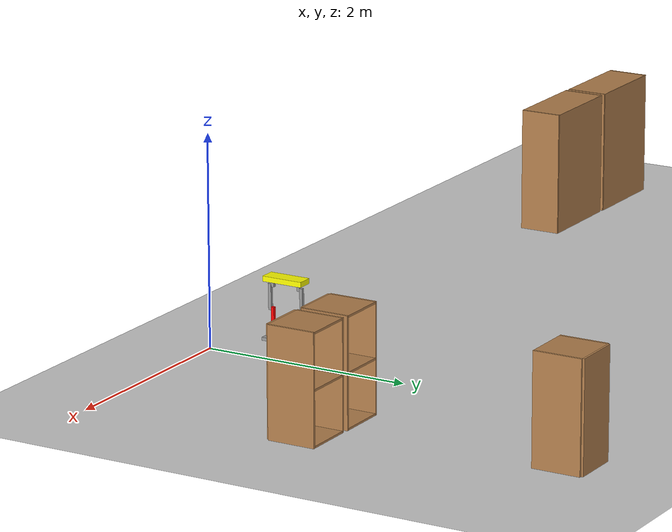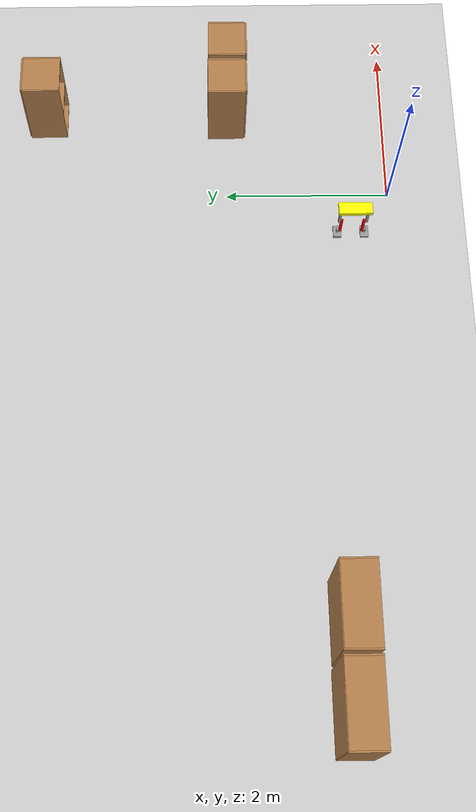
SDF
<sdf version="1.6">
 <world name="default">
  <model name="ground_plane">
   <static>1</static>
   <link name="link">
    <collision name="collision">
     <geometry><plane><normal>0 0 1</normal><size>100 100</size></plane></geometry>
     <surface><friction><ode><mu>100</mu><mu2>50</mu2></ode></friction></surface>
    </collision>
    <visual name="visual">
     <cast_shadows>0</cast_shadows>
     <geometry><plane><normal>0 0 1</normal><size>100 100</size></plane></geometry>
     <material>
      <script><uri>file://media/materials/scripts/gazebo.material</uri><name>Gazebo/Grey</name></script>
     </material>
    </visual>
   </link>
  </model>
  <model name="cabinet_clone">
   <static>1</static>
   <link name="cabinet_bottom_plate">
    <inertial>
     <pose>0 0 -1 0 -0 0</pose>
     <inertia><ixx>2.05</ixx><ixy>0</ixy><ixz>0</ixz><iyy>2.05</iyy><iyz>0</iyz><izz>2.05</izz></inertia>
     <mass>25</mass>
    </inertial>
    <collision name="cabinet_bottom_plate_geom">
     <pose>0 0 0.01 0 -0 0</pose>
     <geometry><box><size>0.45 0.45 0.02</size></box></geometry>
    </collision>
    <visual name="cabinet_bottom_plate_geom_visual">
     <pose>0 0 0.01 0 -0 0</pose>
     <geometry><box><size>0.45 0.45 0.02</size></box></geometry>
     <material>
      <script><uri>file://media/materials/scripts/gazebo.material</uri><name>Gazebo/Wood</name></script>
     </material>
    </visual>
    <collision name="cabinet_bottom_plate_geom_cabinet_back_plate">
     <pose>0.235 0 0.51 0 -0 0</pose>
     <geometry><box><size>0.02 0.45 1.02</size></box></geometry>
    </collision>
    <visual name="cabinet_bottom_plate_geom_cabinet_back_plate_visual">
     <pose>0.235 0 0.51 0 -0 0</pose>
     <geometry><box><size>0.02 0.45 1.02</size></box></geometry>
     <material>
      <script><uri>file://media/materials/scripts/gazebo.material</uri><name>Gazebo/Wood</name></script>
     </material>
    </visual>
    <collision name="cabinet_bottom_plate_geom_cabinet_left_plate">
     <pose>0 0.235 0.51 0 -0 0</pose>
     <geometry><box><size>0.45 0.02 1.02</size></box></geometry>
    </collision>
    <visual name="cabinet_bottom_plate_geom_cabinet_left_plate_visual">
     <pose>0 0.235 0.51 0 -0 0</pose>
     <geometry><box><size>0.45 0.02 1.02</size></box></geometry>
     <material>
      <script><uri>file://media/materials/scripts/gazebo.material</uri><name>Gazebo/Wood</name></script>
     </material>
    </visual>
    <collision name="cabinet_bottom_plate_geom_cabinet_middle_plate">
     <pose>0 0 0.51 0 -0 0</pose>
     <geometry><box><size>0.45 0.45 0.02</size></box></geometry>
    </collision>
    <visual name="cabinet_bottom_plate_geom_cabinet_middle_plate_visual">
     <pose>0 0 0.51 0 -0 0</pose>
     <geometry><box><size>0.45 0.45 0.02</size></box></geometry>
     <material>
      <script><uri>file://media/materials/scripts/gazebo.material</uri><name>Gazebo/Wood</name></script>
     </material>
    </visual>
    <collision name="cabinet_bottom_plate_geom_cabinet_right_plate">
     <pose>0 -0.235 0.51 0 -0 0</pose>
     <geometry><box><size>0.45 0.02 1.02</size></box></geometry>
    </collision>
    <visual name="cabinet_bottom_plate_geom_cabinet_right_plate_visual">
     <pose>0 -0.235 0.51 0 -0 0</pose>
     <geometry><box><size>0.45 0.02 1.02</size></box></geometry>
     <material>
      <script><uri>file://media/materials/scripts/gazebo.material</uri><name>Gazebo/Wood</name></script>
     </material>
    </visual>
    <collision name="cabinet_bottom_plate_geom_cabinet_top_plate">
     <pose>0 0 1.01 0 -0 0</pose>
     <geometry><box><size>0.45 0.45 0.02</size></box></geometry>
    </collision>
    <visual name="cabinet_bottom_plate_geom_cabinet_top_plate_visual">
     <pose>0 0 1.01 0 -0 0</pose>
     <geometry><box><size>0.45 0.45 0.02</size></box></geometry>
     <material>
      <script><uri>file://media/materials/scripts/gazebo.material</uri><name>Gazebo/Wood</name></script>
     </material>
    </visual>
   </link>
   <pose>1.62851 1.98889 0 0 0 -1.5708</pose>
  </model>
  <model name="cabinet_clone_0">
   <static>1</static>
   <link name="cabinet_bottom_plate">
    <inertial>
     <pose>0 0 -1 0 -0 0</pose>
     <inertia><ixx>2.05</ixx><ixy>0</ixy><ixz>0</ixz><iyy>2.05</iyy><iyz>0</iyz><izz>2.05</izz></inertia>
     <mass>25</mass>
    </inertial>
    <collision name="cabinet_bottom_plate_geom">
     <pose>0 0 0.01 0 -0 0</pose>
     <geometry><box><size>0.45 0.45 0.02</size></box></geometry>
    </collision>
    <visual name="cabinet_bottom_plate_geom_visual">
     <pose>0 0 0.01 0 -0 0</pose>
     <geometry><box><size>0.45 0.45 0.02</size></box></geometry>
     <material>
      <script><uri>file://media/materials/scripts/gazebo.material</uri><name>Gazebo/Wood</name></script>
     </material>
    </visual>
    <collision name="cabinet_bottom_plate_geom_cabinet_back_plate">
     <pose>0.235 0 0.51 0 -0 0</pose>
     <geometry><box><size>0.02 0.45 1.02</size></box></geometry>
    </collision>
    <visual name="cabinet_bottom_plate_geom_cabinet_back_plate_visual">
     <pose>0.235 0 0.51 0 -0 0</pose>
     <geometry><box><size>0.02 0.45 1.02</size></box></geometry>
     <material>
      <script><uri>file://media/materials/scripts/gazebo.material</uri><name>Gazebo/Wood</name></script>
     </material>
    </visual>
    <collision name="cabinet_bottom_plate_geom_cabinet_left_plate">
     <pose>0 0.235 0.51 0 -0 0</pose>
     <geometry><box><size>0.45 0.02 1.02</size></box></geometry>
    </collision>
    <visual name="cabinet_bottom_plate_geom_cabinet_left_plate_visual">
     <pose>0 0.235 0.51 0 -0 0</pose>
     <geometry><box><size>0.45 0.02 1.02</size></box></geometry>
     <material>
      <script><uri>file://media/materials/scripts/gazebo.material</uri><name>Gazebo/Wood</name></script>
     </material>
    </visual>
    <collision name="cabinet_bottom_plate_geom_cabinet_middle_plate">
     <pose>0 0 0.51 0 -0 0</pose>
     <geometry><box><size>0.45 0.45 0.02</size></box></geometry>
    </collision>
    <visual name="cabinet_bottom_plate_geom_cabinet_middle_plate_visual">
     <pose>0 0 0.51 0 -0 0</pose>
     <geometry><box><size>0.45 0.45 0.02</size></box></geometry>
     <material>
      <script><uri>file://media/materials/scripts/gazebo.material</uri><name>Gazebo/Wood</name></script>
     </material>
    </visual>
    <collision name="cabinet_bottom_plate_geom_cabinet_right_plate">
     <pose>0 -0.235 0.51 0 -0 0</pose>
     <geometry><box><size>0.45 0.02 1.02</size></box></geometry>
    </collision>
    <visual name="cabinet_bottom_plate_geom_cabinet_right_plate_visual">
     <pose>0 -0.235 0.51 0 -0 0</pose>
     <geometry><box><size>0.45 0.02 1.02</size></box></geometry>
     <material>
      <script><uri>file://media/materials/scripts/gazebo.material</uri><name>Gazebo/Wood</name></script>
     </material>
    </visual>
    <collision name="cabinet_bottom_plate_geom_cabinet_top_plate">
     <pose>0 0 1.01 0 -0 0</pose>
     <geometry><box><size>0.45 0.45 0.02</size></box></geometry>
    </collision>
    <visual name="cabinet_bottom_plate_geom_cabinet_top_plate_visual">
     <pose>0 0 1.01 0 -0 0</pose>
     <geometry><box><size>0.45 0.45 0.02</size></box></geometry>
     <material>
      <script><uri>file://media/materials/scripts/gazebo.material</uri><name>Gazebo/Wood</name></script>
     </material>
    </visual>
   </link>
   <pose>1.09244 1.99689 0 0 0 -1.5708</pose>
  </model>
  <model name="cabinet_1_clone_1">
   <static>1</static>
   <link name="cabinet_bottom_plate">
    <inertial>
     <pose>0 0 -1 0 -0 0</pose>
     <inertia><ixx>2.05</ixx><ixy>0</ixy><ixz>0</ixz><iyy>2.05</iyy><iyz>0</iyz><izz>2.05</izz></inertia>
     <mass>25</mass>
    </inertial>
    <collision name="cabinet_bottom_plate_geom">
     <pose>0 0 0.01 0 -0 0</pose>
     <geometry><box><size>0.45 0.45 0.02</size></box></geometry>
    </collision>
    <visual name="cabinet_bottom_plate_geom_visual">
     <pose>0 0 0.01 0 -0 0</pose>
     <geometry><box><size>0.45 0.45 0.02</size></box></geometry>
     <material>
      <script><uri>file://media/materials/scripts/gazebo.material</uri><name>Gazebo/Wood</name></script>
     </material>
    </visual>
    <collision name="cabinet_bottom_plate_geom_cabinet_back_plate">
     <pose>0.235 0 0.51 0 -0 0</pose>
     <geometry><box><size>0.02 0.45 1.02</size></box></geometry>
    </collision>
    <visual name="cabinet_bottom_plate_geom_cabinet_back_plate_visual">
     <pose>0.235 0 0.51 0 -0 0</pose>
     <geometry><box><size>0.02 0.45 1.02</size></box></geometry>
     <material>
      <script><uri>file://media/materials/scripts/gazebo.material</uri><name>Gazebo/Wood</name></script>
     </material>
    </visual>
    <collision name="cabinet_bottom_plate_geom_cabinet_left_plate">
     <pose>0 0.235 0.51 0 -0 0</pose>
     <geometry><box><size>0.45 0.02 1.02</size></box></geometry>
    </collision>
    <visual name="cabinet_bottom_plate_geom_cabinet_left_plate_visual">
     <pose>0 0.235 0.51 0 -0 0</pose>
     <geometry><box><size>0.45 0.02 1.02</size></box></geometry>
     <material>
      <script><uri>file://media/materials/scripts/gazebo.material</uri><name>Gazebo/Wood</name></script>
     </material>
    </visual>
    <collision name="cabinet_bottom_plate_geom_cabinet_middle_plate">
     <pose>0 0 0.51 0 -0 0</pose>
     <geometry><box><size>0.45 0.45 0.02</size></box></geometry>
    </collision>
    <visual name="cabinet_bottom_plate_geom_cabinet_middle_plate_visual">
     <pose>0 0 0.51 0 -0 0</pose>
     <geometry><box><size>0.45 0.45 0.02</size></box></geometry>
     <material>
      <script><uri>file://media/materials/scripts/gazebo.material</uri><name>Gazebo/Wood</name></script>
     </material>
    </visual>
    <collision name="cabinet_bottom_plate_geom_cabinet_right_plate">
     <pose>0 -0.235 0.51 0 -0 0</pose>
     <geometry><box><size>0.45 0.02 1.02</size></box></geometry>
    </collision>
    <visual name="cabinet_bottom_plate_geom_cabinet_right_plate_visual">
     <pose>0 -0.235 0.51 0 -0 0</pose>
     <geometry><box><size>0.45 0.02 1.02</size></box></geometry>
     <material>
      <script><uri>file://media/materials/scripts/gazebo.material</uri><name>Gazebo/Wood</name></script>
     </material>
    </visual>
    <collision name="cabinet_bottom_plate_geom_cabinet_top_plate">
     <pose>0 0 1.01 0 -0 0</pose>
     <geometry><box><size>0.45 0.45 0.02</size></box></geometry>
    </collision>
    <visual name="cabinet_bottom_plate_geom_cabinet_top_plate_visual">
     <pose>0 0 1.01 0 -0 0</pose>
     <geometry><box><size>0.45 0.45 0.02</size></box></geometry>
     <material>
      <script><uri>file://media/materials/scripts/gazebo.material</uri><name>Gazebo/Wood</name></script>
     </material>
    </visual>
   </link>
   <pose>1.13427 4.23255 0 0 -0 1.5708</pose>
  </model>
  <model name="HumanoidRobot_0_0">
   <link name="link_1">
    <inertial>
     <mass>1</mass>
     <inertia>
      <ixx>0.166667</ixx>
      <ixy>0</ixy>
      <ixz>0</ixz>
      <iyy>0.166667</iyy>
      <iyz>0</iyz>
      <izz>0.166667</izz>
     </inertia>
    </inertial>
    <pose>0 0 0.585 0 -0 0</pose>
    <self_collide>1</self_collide>
    <visual name="ModelPreview_0::link_1::visual_2">
     <pose>0 -0.135 -0.055 0 -0 0</pose>
     <geometry><box><size>0.03 0.03 0.06</size></box></geometry>
     <material>
      <lighting>1</lighting>
      <script><uri>file://media/materials/scripts/gazebo.material</uri><name>Gazebo/Grey</name></script>
      <shader type="vertex"><normal_map>__default__</normal_map></shader>
      <ambient>0.3 0.3 0.3 1</ambient>
      <diffuse>0.7 0.7 0.7 1</diffuse>
      <specular>0.01 0.01 0.01 1</specular>
      <emissive>0 0 0 1</emissive>
     </material>
    </visual>
    <visual name="ModelPreview_0::link_1::visual_1">
     <pose>0 0.135 -0.055 0 -0 0</pose>
     <geometry><box><size>0.03 0.03 0.06</size></box></geometry>
     <material>
      <lighting>1</lighting>
      <script><uri>file://media/materials/scripts/gazebo.material</uri><name>Gazebo/Grey</name></script>
      <shader type="vertex"><normal_map>__default__</normal_map></shader>
      <ambient>0.3 0.3 0.3 1</ambient>
      <diffuse>0.7 0.7 0.7 1</diffuse>
      <specular>0.01 0.01 0.01 1</specular>
      <emissive>0 0 0 1</emissive>
     </material>
    </visual>
    <visual name="visual">
     <geometry><box><size>0.15 0.4 0.05</size></box></geometry>
     <material>
      <lighting>1</lighting>
      <script><uri>file://media/materials/scripts/gazebo.material</uri><name>Gazebo/Grey</name></script>
      <shader type="vertex"><normal_map>__default__</normal_map></shader>
      <ambient>1 1 0 1</ambient>
      <diffuse>0.7 0.7 0.7 1</diffuse>
      <specular>0.01 0.01 0.01 1</specular>
      <emissive>0 0 0 1</emissive>
     </material>
    </visual>
    <collision name="collision">
     <geometry><box><size>0.15 0.4 0.05</size></box></geometry>
     <surface>
      <friction>
       <ode><mu>1</mu><mu2>1</mu2><fdir1>0 0 0</fdir1><slip1>0</slip1><slip2>0</slip2></ode>
       <torsional>
        <coefficient>1</coefficient>
        <patch_radius>0</patch_radius>
        <surface_radius>0</surface_radius>
        <use_patch_radius>1</use_patch_radius>
        <ode><slip>0</slip></ode>
       </torsional>
      </friction>
      <bounce><restitution_coefficient>0</restitution_coefficient><threshold>1e+06</threshold></bounce>
      <contact>
       <collide_without_contact>0</collide_without_contact>
       <collide_without_contact_bitmask>1</collide_without_contact_bitmask>
       <collide_bitmask>1</collide_bitmask>
       <ode>
        <soft_cfm>0</soft_cfm>
        <soft_erp>0.2</soft_erp>
        <kp>1e+13</kp>
        <kd>1</kd>
        <max_vel>0.01</max_vel>
        <min_depth>0</min_depth>
       </ode>
       <bullet>
        <split_impulse>1</split_impulse>
        <split_impulse_penetration_threshold>-0.01</split_impulse_penetration_threshold>
        <soft_cfm>0</soft_cfm>
        <soft_erp>0.2</soft_erp>
        <kp>1e+13</kp>
        <kd>1</kd>
       </bullet>
      </contact>
     </surface>
    </collision>
    <collision name="collision_2">
     <pose>0 -0.135 -0.055 0 -0 0</pose>
     <geometry><box><size>0.03 0.03 0.06</size></box></geometry>
     <surface>
      <friction>
       <ode><mu>1</mu><mu2>1</mu2><fdir1>0 0 0</fdir1><slip1>0</slip1><slip2>0</slip2></ode>
       <torsional>
        <coefficient>1</coefficient>
        <patch_radius>0</patch_radius>
        <surface_radius>0</surface_radius>
        <use_patch_radius>1</use_patch_radius>
        <ode><slip>0</slip></ode>
       </torsional>
      </friction>
      <bounce><restitution_coefficient>0</restitution_coefficient><threshold>1e+06</threshold></bounce>
      <contact>
       <collide_without_contact>0</collide_without_contact>
       <collide_without_contact_bitmask>1</collide_without_contact_bitmask>
       <collide_bitmask>1</collide_bitmask>
       <ode>
        <soft_cfm>0</soft_cfm>
        <soft_erp>0.2</soft_erp>
        <kp>1e+13</kp>
        <kd>1</kd>
        <max_vel>0.01</max_vel>
        <min_depth>0</min_depth>
       </ode>
       <bullet>
        <split_impulse>1</split_impulse>
        <split_impulse_penetration_threshold>-0.01</split_impulse_penetration_threshold>
        <soft_cfm>0</soft_cfm>
        <soft_erp>0.2</soft_erp>
        <kp>1e+13</kp>
        <kd>1</kd>
       </bullet>
      </contact>
     </surface>
    </collision>
    <collision name="collision_1">
     <pose>0 0.135 -0.055 0 -0 0</pose>
     <geometry><box><size>0.03 0.03 0.06</size></box></geometry>
     <surface>
      <friction>
       <ode><mu>1</mu><mu2>1</mu2><fdir1>0 0 0</fdir1><slip1>0</slip1><slip2>0</slip2></ode>
       <torsional>
        <coefficient>1</coefficient>
        <patch_radius>0</patch_radius>
        <surface_radius>0</surface_radius>
        <use_patch_radius>1</use_patch_radius>
        <ode><slip>0</slip></ode>
       </torsional>
      </friction>
      <bounce><restitution_coefficient>0</restitution_coefficient><threshold>1e+06</threshold></bounce>
      <contact>
       <collide_without_contact>0</collide_without_contact>
       <collide_without_contact_bitmask>1</collide_without_contact_bitmask>
       <collide_bitmask>1</collide_bitmask>
       <ode>
        <soft_cfm>0</soft_cfm>
        <soft_erp>0.2</soft_erp>
        <kp>1e+13</kp>
        <kd>1</kd>
        <max_vel>0.01</max_vel>
        <min_depth>0</min_depth>
       </ode>
       <bullet>
        <split_impulse>1</split_impulse>
        <split_impulse_penetration_threshold>-0.01</split_impulse_penetration_threshold>
        <soft_cfm>0</soft_cfm>
        <soft_erp>0.2</soft_erp>
        <kp>1e+13</kp>
        <kd>1</kd>
       </bullet>
      </contact>
     </surface>
    </collision>
   </link>
   <link name="link_0">
    <inertial>
     <mass>1</mass>
     <inertia>
      <ixx>0.166667</ixx>
      <ixy>0</ixy>
      <ixz>0</ixz>
      <iyy>0.166667</iyy>
      <iyz>0</iyz>
      <izz>0.166667</izz>
     </inertia>
    </inertial>
    <pose>0 -0.165 0.015 0 -0 0</pose>
    <self_collide>1</self_collide>
    <visual name="ModelPreview_1::link_0::visual_1">
     <pose>0 0 0.045 0 -0 0</pose>
     <geometry><box><size>0.03 0.03 0.06</size></box></geometry>
     <material>
      <lighting>1</lighting>
      <script><uri>file://media/materials/scripts/gazebo.material</uri><name>Gazebo/Grey</name></script>
      <shader type="vertex"><normal_map>__default__</normal_map></shader>
      <ambient>0.3 0.3 0.3 1</ambient>
      <diffuse>0.7 0.7 0.7 1</diffuse>
      <specular>0.01 0.01 0.01 1</specular>
      <emissive>0 0 0 1</emissive>
     </material>
    </visual>
    <visual name="visual">
     <geometry><box><size>0.15 0.1 0.03</size></box></geometry>
     <material>
      <lighting>1</lighting>
      <script><uri>file://media/materials/scripts/gazebo.material</uri><name>Gazebo/Grey</name></script>
      <shader type="vertex"><normal_map>__default__</normal_map></shader>
      <ambient>0.3 0.3 0.3 1</ambient>
      <diffuse>0.7 0.7 0.7 1</diffuse>
      <specular>0.01 0.01 0.01 1</specular>
      <emissive>0 0 0 1</emissive>
     </material>
    </visual>
    <collision name="collision_1">
     <pose>0 0 0.045 0 -0 0</pose>
     <geometry><box><size>0.03 0.03 0.06</size></box></geometry>
     <surface>
      <friction>
       <ode><mu>1</mu><mu2>1</mu2><fdir1>0 0 0</fdir1><slip1>0</slip1><slip2>0</slip2></ode>
       <torsional>
        <coefficient>1</coefficient>
        <patch_radius>0</patch_radius>
        <surface_radius>0</surface_radius>
        <use_patch_radius>1</use_patch_radius>
        <ode><slip>0</slip></ode>
       </torsional>
      </friction>
      <bounce><restitution_coefficient>0</restitution_coefficient><threshold>1e+06</threshold></bounce>
      <contact>
       <collide_without_contact>0</collide_without_contact>
       <collide_without_contact_bitmask>1</collide_without_contact_bitmask>
       <collide_bitmask>1</collide_bitmask>
       <ode>
        <soft_cfm>0</soft_cfm>
        <soft_erp>0.2</soft_erp>
        <kp>1e+13</kp>
        <kd>1</kd>
        <max_vel>0.01</max_vel>
        <min_depth>0</min_depth>
       </ode>
       <bullet>
        <split_impulse>1</split_impulse>
        <split_impulse_penetration_threshold>-0.01</split_impulse_penetration_threshold>
        <soft_cfm>0</soft_cfm>
        <soft_erp>0.2</soft_erp>
        <kp>1e+13</kp>
        <kd>1</kd>
       </bullet>
      </contact>
     </surface>
    </collision>
    <collision name="collision">
     <geometry><box><size>0.15 0.1 0.03</size></box></geometry>
     <surface>
      <friction>
       <ode><mu>1</mu><mu2>1</mu2><fdir1>0 0 0</fdir1><slip1>0</slip1><slip2>0</slip2></ode>
       <torsional>
        <coefficient>1</coefficient>
        <patch_radius>0</patch_radius>
        <surface_radius>0</surface_radius>
        <use_patch_radius>1</use_patch_radius>
        <ode><slip>0</slip></ode>
       </torsional>
      </friction>
      <bounce><restitution_coefficient>0</restitution_coefficient><threshold>1e+06</threshold></bounce>
      <contact>
       <collide_without_contact>0</collide_without_contact>
       <collide_without_contact_bitmask>1</collide_without_contact_bitmask>
       <collide_bitmask>1</collide_bitmask>
       <ode>
        <soft_cfm>0</soft_cfm>
        <soft_erp>0.2</soft_erp>
        <kp>1e+13</kp>
        <kd>1</kd>
        <max_vel>0.01</max_vel>
        <min_depth>0</min_depth>
       </ode>
       <bullet>
        <split_impulse>1</split_impulse>
        <split_impulse_penetration_threshold>-0.01</split_impulse_penetration_threshold>
        <soft_cfm>0</soft_cfm>
        <soft_erp>0.2</soft_erp>
        <kp>1e+13</kp>
        <kd>1</kd>
       </bullet>
      </contact>
     </surface>
    </collision>
   </link>
   <link name="link_0_clone">
    <inertial>
     <mass>1</mass>
     <inertia>
      <ixx>0.166667</ixx>
      <ixy>0</ixy>
      <ixz>0</ixz>
      <iyy>0.166667</iyy>
      <iyz>0</iyz>
      <izz>0.166667</izz>
     </inertia>
    </inertial>
    <pose>0 0.165 0.015 0 -0 0</pose>
    <self_collide>1</self_collide>
    <visual name="visual">
     <geometry><box><size>0.15 0.1 0.03</size></box></geometry>
     <material>
      <lighting>1</lighting>
      <script><uri>file://media/materials/scripts/gazebo.material</uri><name>Gazebo/Grey</name></script>
      <shader type="vertex"><normal_map>__default__</normal_map></shader>
      <ambient>0.3 0.3 0.3 1</ambient>
      <diffuse>0.7 0.7 0.7 1</diffuse>
      <specular>0.01 0.01 0.01 1</specular>
      <emissive>0 0 0 1</emissive>
     </material>
    </visual>
    <visual name="visual_1">
     <pose>0 0 0.045 0 -0 0</pose>
     <geometry><box><size>0.03 0.03 0.06</size></box></geometry>
     <material>
      <lighting>1</lighting>
      <script><uri>file://media/materials/scripts/gazebo.material</uri><name>Gazebo/Grey</name></script>
      <shader type="vertex"><normal_map>__default__</normal_map></shader>
      <ambient>0.3 0.3 0.3 1</ambient>
      <diffuse>0.7 0.7 0.7 1</diffuse>
      <specular>0.01 0.01 0.01 1</specular>
      <emissive>0 0 0 1</emissive>
     </material>
    </visual>
    <collision name="collision">
     <geometry><box><size>0.15 0.1 0.03</size></box></geometry>
     <surface>
      <friction>
       <ode><mu>1</mu><mu2>1</mu2><fdir1>0 0 0</fdir1><slip1>0</slip1><slip2>0</slip2></ode>
       <torsional>
        <coefficient>1</coefficient>
        <patch_radius>0</patch_radius>
        <surface_radius>0</surface_radius>
        <use_patch_radius>1</use_patch_radius>
        <ode><slip>0</slip></ode>
       </torsional>
      </friction>
      <bounce><restitution_coefficient>0</restitution_coefficient><threshold>1e+06</threshold></bounce>
      <contact>
       <collide_without_contact>0</collide_without_contact>
       <collide_without_contact_bitmask>1</collide_without_contact_bitmask>
       <collide_bitmask>1</collide_bitmask>
       <ode>
        <soft_cfm>0</soft_cfm>
        <soft_erp>0.2</soft_erp>
        <kp>1e+13</kp>
        <kd>1</kd>
        <max_vel>0.01</max_vel>
        <min_depth>0</min_depth>
       </ode>
       <bullet>
        <split_impulse>1</split_impulse>
        <split_impulse_penetration_threshold>-0.01</split_impulse_penetration_threshold>
        <soft_cfm>0</soft_cfm>
        <soft_erp>0.2</soft_erp>
        <kp>1e+13</kp>
        <kd>1</kd>
       </bullet>
      </contact>
     </surface>
    </collision>
    <collision name="collision_1">
     <pose>0 0 0.045 0 -0 0</pose>
     <geometry><box><size>0.03 0.03 0.06</size></box></geometry>
     <surface>
      <friction>
       <ode><mu>1</mu><mu2>1</mu2><fdir1>0 0 0</fdir1><slip1>0</slip1><slip2>0</slip2></ode>
       <torsional>
        <coefficient>1</coefficient>
        <patch_radius>0</patch_radius>
        <surface_radius>0</surface_radius>
        <use_patch_radius>1</use_patch_radius>
        <ode><slip>0</slip></ode>
       </torsional>
      </friction>
      <bounce><restitution_coefficient>0</restitution_coefficient><threshold>1e+06</threshold></bounce>
      <contact>
       <collide_without_contact>0</collide_without_contact>
       <collide_without_contact_bitmask>1</collide_without_contact_bitmask>
       <collide_bitmask>1</collide_bitmask>
       <ode>
        <soft_cfm>0</soft_cfm>
        <soft_erp>0.2</soft_erp>
        <kp>1e+13</kp>
        <kd>1</kd>
        <max_vel>0.01</max_vel>
        <min_depth>0</min_depth>
       </ode>
       <bullet>
        <split_impulse>1</split_impulse>
        <split_impulse_penetration_threshold>-0.01</split_impulse_penetration_threshold>
        <soft_cfm>0</soft_cfm>
        <soft_erp>0.2</soft_erp>
        <kp>1e+13</kp>
        <kd>1</kd>
       </bullet>
      </contact>
     </surface>
    </collision>
   </link>
   <link name="link_2">
    <inertial>
     <mass>1</mass>
     <inertia>
      <ixx>0.166667</ixx>
      <ixy>0</ixy>
      <ixz>0</ixz>
      <iyy>0.166667</iyy>
      <iyz>0</iyz>
      <izz>0.166667</izz>
     </inertia>
    </inertial>
    <pose>0 -0.165 0.405 0 0.023326 0</pose>
    <self_collide>1</self_collide>
    <visual name="visual">
     <geometry><box><size>0.03 0.03 0.25</size></box></geometry>
     <material>
      <lighting>1</lighting>
      <script><uri>file://media/materials/scripts/gazebo.material</uri><name>Gazebo/Grey</name></script>
      <shader type="vertex"><normal_map>__default__</normal_map></shader>
      <ambient>0.3 0.3 0.3 1</ambient>
      <diffuse>0.7 0.7 0.7 1</diffuse>
      <specular>0.01 0.01 0.01 1</specular>
      <emissive>0 0 0 1</emissive>
     </material>
    </visual>
    <collision name="collision">
     <geometry><box><size>0.03 0.03 0.25</size></box></geometry>
     <surface>
      <friction>
       <ode><mu>1</mu><mu2>1</mu2><fdir1>0 0 0</fdir1><slip1>0</slip1><slip2>0</slip2></ode>
       <torsional>
        <coefficient>1</coefficient>
        <patch_radius>0</patch_radius>
        <surface_radius>0</surface_radius>
        <use_patch_radius>1</use_patch_radius>
        <ode><slip>0</slip></ode>
       </torsional>
      </friction>
      <bounce><restitution_coefficient>0</restitution_coefficient><threshold>1e+06</threshold></bounce>
      <contact>
       <collide_without_contact>0</collide_without_contact>
       <collide_without_contact_bitmask>1</collide_without_contact_bitmask>
       <collide_bitmask>1</collide_bitmask>
       <ode>
        <soft_cfm>0</soft_cfm>
        <soft_erp>0.2</soft_erp>
        <kp>1e+13</kp>
        <kd>1</kd>
        <max_vel>0.01</max_vel>
        <min_depth>0</min_depth>
       </ode>
       <bullet>
        <split_impulse>1</split_impulse>
        <split_impulse_penetration_threshold>-0.01</split_impulse_penetration_threshold>
        <soft_cfm>0</soft_cfm>
        <soft_erp>0.2</soft_erp>
        <kp>1e+13</kp>
        <kd>1</kd>
       </bullet>
      </contact>
     </surface>
    </collision>
   </link>
   <link name="link_2_clone">
    <inertial>
     <mass>1</mass>
     <inertia>
      <ixx>0.166667</ixx>
      <ixy>0</ixy>
      <ixz>0</ixz>
      <iyy>0.166667</iyy>
      <iyz>0</iyz>
      <izz>0.166667</izz>
     </inertia>
    </inertial>
    <pose>0 -0.135 0.185 0 0.023326 0</pose>
    <self_collide>1</self_collide>
    <visual name="visual">
     <geometry><box><size>0.03 0.03 0.25</size></box></geometry>
     <material>
      <lighting>1</lighting>
      <script><uri>file://media/materials/scripts/gazebo.material</uri><name>Gazebo/Grey</name></script>
      <shader type="vertex"><normal_map>__default__</normal_map></shader>
      <ambient>1 0 0 1</ambient>
      <diffuse>0.7 0.7 0.7 1</diffuse>
      <specular>0.01 0.01 0.01 1</specular>
      <emissive>0 0 0 1</emissive>
     </material>
    </visual>
    <collision name="collision">
     <geometry><box><size>0.03 0.03 0.25</size></box></geometry>
     <surface>
      <friction>
       <ode><mu>1</mu><mu2>1</mu2><fdir1>0 0 0</fdir1><slip1>0</slip1><slip2>0</slip2></ode>
       <torsional>
        <coefficient>1</coefficient>
        <patch_radius>0</patch_radius>
        <surface_radius>0</surface_radius>
        <use_patch_radius>1</use_patch_radius>
        <ode><slip>0</slip></ode>
       </torsional>
      </friction>
      <bounce><restitution_coefficient>0</restitution_coefficient><threshold>1e+06</threshold></bounce>
      <contact>
       <collide_without_contact>0</collide_without_contact>
       <collide_without_contact_bitmask>1</collide_without_contact_bitmask>
       <collide_bitmask>1</collide_bitmask>
       <ode>
        <soft_cfm>0</soft_cfm>
        <soft_erp>0.2</soft_erp>
        <kp>1e+13</kp>
        <kd>1</kd>
        <max_vel>0.01</max_vel>
        <min_depth>0</min_depth>
       </ode>
       <bullet>
        <split_impulse>1</split_impulse>
        <split_impulse_penetration_threshold>-0.01</split_impulse_penetration_threshold>
        <soft_cfm>0</soft_cfm>
        <soft_erp>0.2</soft_erp>
        <kp>1e+13</kp>
        <kd>1</kd>
       </bullet>
      </contact>
     </surface>
    </collision>
   </link>
   <link name="link_2_clone_0">
    <inertial>
     <mass>1</mass>
     <inertia>
      <ixx>0.166667</ixx>
      <ixy>0</ixy>
      <ixz>0</ixz>
      <iyy>0.166667</iyy>
      <iyz>0</iyz>
      <izz>0.166667</izz>
     </inertia>
    </inertial>
    <pose>0 0.165 0.405 0 0.023326 0</pose>
    <self_collide>1</self_collide>
    <visual name="visual">
     <geometry><box><size>0.03 0.03 0.25</size></box></geometry>
     <material>
      <lighting>1</lighting>
      <script><uri>file://media/materials/scripts/gazebo.material</uri><name>Gazebo/Grey</name></script>
      <shader type="vertex"><normal_map>__default__</normal_map></shader>
      <ambient>0.3 0.3 0.3 1</ambient>
      <diffuse>0.7 0.7 0.7 1</diffuse>
      <specular>0.01 0.01 0.01 1</specular>
      <emissive>0 0 0 1</emissive>
     </material>
    </visual>
    <collision name="collision">
     <geometry><box><size>0.03 0.03 0.25</size></box></geometry>
     <surface>
      <friction>
       <ode><mu>1</mu><mu2>1</mu2><fdir1>0 0 0</fdir1><slip1>0</slip1><slip2>0</slip2></ode>
       <torsional>
        <coefficient>1</coefficient>
        <patch_radius>0</patch_radius>
        <surface_radius>0</surface_radius>
        <use_patch_radius>1</use_patch_radius>
        <ode><slip>0</slip></ode>
       </torsional>
      </friction>
      <bounce><restitution_coefficient>0</restitution_coefficient><threshold>1e+06</threshold></bounce>
      <contact>
       <collide_without_contact>0</collide_without_contact>
       <collide_without_contact_bitmask>1</collide_without_contact_bitmask>
       <collide_bitmask>1</collide_bitmask>
       <ode>
        <soft_cfm>0</soft_cfm>
        <soft_erp>0.2</soft_erp>
        <kp>1e+13</kp>
        <kd>1</kd>
        <max_vel>0.01</max_vel>
        <min_depth>0</min_depth>
       </ode>
       <bullet>
        <split_impulse>1</split_impulse>
        <split_impulse_penetration_threshold>-0.01</split_impulse_penetration_threshold>
        <soft_cfm>0</soft_cfm>
        <soft_erp>0.2</soft_erp>
        <kp>1e+13</kp>
        <kd>1</kd>
       </bullet>
      </contact>
     </surface>
    </collision>
   </link>
   <link name="link_2_clone_1">
    <inertial>
     <mass>1</mass>
     <inertia>
      <ixx>0.166667</ixx>
      <ixy>0</ixy>
      <ixz>0</ixz>
      <iyy>0.166667</iyy>
      <iyz>0</iyz>
      <izz>0.166667</izz>
     </inertia>
    </inertial>
    <pose>0 0.135 0.185 0 0.023326 0</pose>
    <self_collide>1</self_collide>
    <visual name="visual">
     <geometry><box><size>0.03 0.03 0.25</size></box></geometry>
     <material>
      <lighting>1</lighting>
      <script><uri>file://media/materials/scripts/gazebo.material</uri><name>Gazebo/Grey</name></script>
      <shader type="vertex"><normal_map>__default__</normal_map></shader>
      <ambient>1 0 0 1</ambient>
      <diffuse>0.7 0.7 0.7 1</diffuse>
      <specular>0.01 0.01 0.01 1</specular>
      <emissive>0 0 0 1</emissive>
     </material>
    </visual>
    <collision name="collision">
     <geometry><box><size>0.03 0.03 0.25</size></box></geometry>
     <surface>
      <friction>
       <ode><mu>1</mu><mu2>1</mu2><fdir1>0 0 0</fdir1><slip1>0</slip1><slip2>0</slip2></ode>
       <torsional>
        <coefficient>1</coefficient>
        <patch_radius>0</patch_radius>
        <surface_radius>0</surface_radius>
        <use_patch_radius>1</use_patch_radius>
        <ode><slip>0</slip></ode>
       </torsional>
      </friction>
      <bounce><restitution_coefficient>0</restitution_coefficient><threshold>1e+06</threshold></bounce>
      <contact>
       <collide_without_contact>0</collide_without_contact>
       <collide_without_contact_bitmask>1</collide_without_contact_bitmask>
       <collide_bitmask>1</collide_bitmask>
       <ode>
        <soft_cfm>0</soft_cfm>
        <soft_erp>0.2</soft_erp>
        <kp>1e+13</kp>
        <kd>1</kd>
        <max_vel>0.01</max_vel>
        <min_depth>0</min_depth>
       </ode>
       <bullet>
        <split_impulse>1</split_impulse>
        <split_impulse_penetration_threshold>-0.01</split_impulse_penetration_threshold>
        <soft_cfm>0</soft_cfm>
        <soft_erp>0.2</soft_erp>
        <kp>1e+13</kp>
        <kd>1</kd>
       </bullet>
      </contact>
     </surface>
    </collision>
   </link>
   <joint name="link_1_JOINT_1" type="revolute">
    <parent>link_1</parent>
    <child>link_2</child>
    <pose>0 0 0.11 0 -0 0</pose>
    <axis>
     <xyz>0 1 0</xyz>
     <use_parent_model_frame>0</use_parent_model_frame>
     <limit>
      <lower>-1.79769e+308</lower>
      <upper>1.79769e+308</upper>
      <effort>-1</effort>
      <velocity>-1</velocity>
     </limit>
     <dynamics>
      <spring_reference>0</spring_reference>
      <spring_stiffness>0</spring_stiffness>
      <damping>0</damping>
      <friction>0</friction>
     </dynamics>
    </axis>
    <physics>
     <ode><limit><cfm>0</cfm><erp>0.2</erp></limit><suspension><cfm>0</cfm><erp>0.2</erp></suspension></ode>
    </physics>
   </joint>
   <joint name="link_1_JOINT_2" type="revolute">
    <parent>link_1</parent>
    <child>link_2_clone_0</child>
    <pose>0 0 0.11 0 -0 0</pose>
    <axis>
     <xyz>0 1 0</xyz>
     <use_parent_model_frame>0</use_parent_model_frame>
     <limit>
      <lower>-1.79769e+308</lower>
      <upper>1.79769e+308</upper>
      <effort>-1</effort>
      <velocity>-1</velocity>
     </limit>
     <dynamics>
      <spring_reference>0</spring_reference>
      <spring_stiffness>0</spring_stiffness>
      <damping>0</damping>
      <friction>0</friction>
     </dynamics>
    </axis>
    <physics>
     <ode><limit><cfm>0</cfm><erp>0.2</erp></limit><suspension><cfm>0</cfm><erp>0.2</erp></suspension></ode>
    </physics>
   </joint>
   <joint name="link_2_JOINT_0" type="revolute">
    <parent>link_2</parent>
    <child>link_2_clone</child>
    <pose>0 0 0.11 0 -0 0</pose>
    <axis>
     <xyz>0 1 0</xyz>
     <use_parent_model_frame>0</use_parent_model_frame>
     <limit>
      <lower>-1.79769e+308</lower>
      <upper>1.79769e+308</upper>
      <effort>-1</effort>
      <velocity>-1</velocity>
     </limit>
     <dynamics>
      <spring_reference>0</spring_reference>
      <spring_stiffness>0</spring_stiffness>
      <damping>0</damping>
      <friction>0</friction>
     </dynamics>
    </axis>
    <physics>
     <ode><limit><cfm>0</cfm><erp>0.2</erp></limit><suspension><cfm>0</cfm><erp>0.2</erp></suspension></ode>
    </physics>
   </joint>
   <joint name="link_2_clone_0_JOINT_3" type="revolute">
    <parent>link_2_clone_0</parent>
    <child>link_2_clone_1</child>
    <pose>0 0 0.11 0 -0 0</pose>
    <axis>
     <xyz>0 1 0</xyz>
     <use_parent_model_frame>0</use_parent_model_frame>
     <limit>
      <lower>-1.79769e+308</lower>
      <upper>1.79769e+308</upper>
      <effort>-1</effort>
      <velocity>-1</velocity>
     </limit>
     <dynamics>
      <spring_reference>0</spring_reference>
      <spring_stiffness>0</spring_stiffness>
      <damping>0</damping>
      <friction>0</friction>
     </dynamics>
    </axis>
    <physics>
     <ode><limit><cfm>0</cfm><erp>0.2</erp></limit><suspension><cfm>0</cfm><erp>0.2</erp></suspension></ode>
    </physics>
   </joint>
   <joint name="link_2_clone_1_JOINT_4" type="revolute">
    <parent>link_2_clone_1</parent>
    <child>link_0_clone</child>
    <pose>0 0 0.06 0 -0 0</pose>
    <axis>
     <xyz>0 1 0</xyz>
     <use_parent_model_frame>0</use_parent_model_frame>
     <limit>
      <lower>-1.79769e+308</lower>
      <upper>1.79769e+308</upper>
      <effort>-1</effort>
      <velocity>-1</velocity>
     </limit>
     <dynamics>
      <spring_reference>0</spring_reference>
      <spring_stiffness>0</spring_stiffness>
      <damping>0</damping>
      <friction>0</friction>
     </dynamics>
    </axis>
    <physics>
     <ode><limit><cfm>0</cfm><erp>0.2</erp></limit><suspension><cfm>0</cfm><erp>0.2</erp></suspension></ode>
    </physics>
   </joint>
   <joint name="link_2_clone_JOINT_1" type="revolute">
    <parent>link_2_clone</parent>
    <child>link_0</child>
    <pose>0 0 0.06 0 -0 0</pose>
    <axis>
     <xyz>0 1 0</xyz>
     <use_parent_model_frame>0</use_parent_model_frame>
     <limit>
      <lower>-1.79769e+308</lower>
      <upper>1.79769e+308</upper>
      <effort>-1</effort>
      <velocity>-1</velocity>
     </limit>
     <dynamics>
      <spring_reference>0</spring_reference>
      <spring_stiffness>0</spring_stiffness>
      <damping>0</damping>
      <friction>0</friction>
     </dynamics>
    </axis>
    <physics>
     <ode><limit><cfm>0</cfm><erp>0.2</erp></limit><suspension><cfm>0</cfm><erp>0.2</erp></suspension></ode>
    </physics>
   </joint>
   <static>0</static>
   <pose>-0.511211 0.485935 0 0 -0 0</pose>
  </model>
  <model name="bookshelf">
   <static>1</static>
   <link name="link">
    <inertial><mass>1</mass></inertial>
    <collision name="back">
     <pose>0 0.005 0.6 0 -0 0</pose>
     <geometry><box><size>0.9 0.01 1.2</size></box></geometry>
    </collision>
    <visual name="visual1">
     <pose>0 0.005 0.6 0 -0 0</pose>
     <geometry><box><size>0.9 0.01 1.2</size></box></geometry>
     <material>
      <script><uri>file://media/materials/scripts/gazebo.material</uri><name>Gazebo/Wood</name></script>
     </material>
    </visual>
    <collision name="left_side">
     <pose>0.45 -0.195 0.6 0 -0 0</pose>
     <geometry><box><size>0.02 0.4 1.2</size></box></geometry>
    </collision>
    <visual name="visual2">
     <pose>0.45 -0.195 0.6 0 -0 0</pose>
     <geometry><box><size>0.02 0.4 1.2</size></box></geometry>
     <material>
      <script><uri>file://media/materials/scripts/gazebo.material</uri><name>Gazebo/Wood</name></script>
     </material>
    </visual>
    <collision name="right_side">
     <pose>-0.45 -0.195 0.6 0 -0 0</pose>
     <geometry><box><size>0.02 0.4 1.2</size></box></geometry>
    </collision>
    <visual name="visual3">
     <pose>-0.45 -0.195 0.6 0 -0 0</pose>
     <geometry><box><size>0.02 0.4 1.2</size></box></geometry>
     <material>
      <script><uri>file://media/materials/scripts/gazebo.material</uri><name>Gazebo/Wood</name></script>
     </material>
    </visual>
    <collision name="bottom">
     <pose>0 -0.195 0.03 0 -0 0</pose>
     <geometry><box><size>0.88 0.4 0.06</size></box></geometry>
    </collision>
    <visual name="visual4">
     <pose>0 -0.195 0.03 0 -0 0</pose>
     <geometry><box><size>0.88 0.4 0.06</size></box></geometry>
     <material>
      <script><uri>file://media/materials/scripts/gazebo.material</uri><name>Gazebo/Wood</name></script>
     </material>
    </visual>
    <collision name="top">
     <pose>0 -0.195 1.19 0 -0 0</pose>
     <geometry><box><size>0.88 0.4 0.02</size></box></geometry>
    </collision>
    <visual name="visual5">
     <pose>0 -0.195 1.19 0 -0 0</pose>
     <geometry><box><size>0.88 0.4 0.02</size></box></geometry>
     <material>
      <script><uri>file://media/materials/scripts/gazebo.material</uri><name>Gazebo/Wood</name></script>
     </material>
    </visual>
    <collision name="low_shelf">
     <pose>0 -0.195 0.43 0 -0 0</pose>
     <geometry><box><size>0.88 0.4 0.02</size></box></geometry>
    </collision>
    <visual name="visual6">
     <pose>0 -0.195 0.43 0 -0 0</pose>
     <geometry><box><size>0.88 0.4 0.02</size></box></geometry>
     <material>
      <script><uri>file://media/materials/scripts/gazebo.material</uri><name>Gazebo/Wood</name></script>
     </material>
    </visual>
    <collision name="high_shelf">
     <pose>0 -0.195 0.8 0 -0 0</pose>
     <geometry><box><size>0.88 0.4 0.02</size></box></geometry>
    </collision>
    <visual name="visual7">
     <pose>0 -0.195 0.8 0 -0 0</pose>
     <geometry><box><size>0.88 0.4 0.02</size></box></geometry>
     <material>
      <script><uri>file://media/materials/scripts/gazebo.material</uri><name>Gazebo/Wood</name></script>
     </material>
    </visual>
   </link>
   <pose>-6.22924 0.974511 0 0 -0 0</pose>
  </model>
  <model name="bookshelf_clone">
   <static>1</static>
   <link name="link">
    <inertial><mass>1</mass></inertial>
    <collision name="back">
     <pose>0 0.005 0.6 0 -0 0</pose>
     <geometry><box><size>0.9 0.01 1.2</size></box></geometry>
    </collision>
    <visual name="visual1">
     <pose>0 0.005 0.6 0 -0 0</pose>
     <geometry><box><size>0.9 0.01 1.2</size></box></geometry>
     <material>
      <script><uri>file://media/materials/scripts/gazebo.material</uri><name>Gazebo/Wood</name></script>
     </material>
    </visual>
    <collision name="left_side">
     <pose>0.45 -0.195 0.6 0 -0 0</pose>
     <geometry><box><size>0.02 0.4 1.2</size></box></geometry>
    </collision>
    <visual name="visual2">
     <pose>0.45 -0.195 0.6 0 -0 0</pose>
     <geometry><box><size>0.02 0.4 1.2</size></box></geometry>
     <material>
      <script><uri>file://media/materials/scripts/gazebo.material</uri><name>Gazebo/Wood</name></script>
     </material>
    </visual>
    <collision name="right_side">
     <pose>-0.45 -0.195 0.6 0 -0 0</pose>
     <geometry><box><size>0.02 0.4 1.2</size></box></geometry>
    </collision>
    <visual name="visual3">
     <pose>-0.45 -0.195 0.6 0 -0 0</pose>
     <geometry><box><size>0.02 0.4 1.2</size></box></geometry>
     <material>
      <script><uri>file://media/materials/scripts/gazebo.material</uri><name>Gazebo/Wood</name></script>
     </material>
    </visual>
    <collision name="bottom">
     <pose>0 -0.195 0.03 0 -0 0</pose>
     <geometry><box><size>0.88 0.4 0.06</size></box></geometry>
    </collision>
    <visual name="visual4">
     <pose>0 -0.195 0.03 0 -0 0</pose>
     <geometry><box><size>0.88 0.4 0.06</size></box></geometry>
     <material>
      <script><uri>file://media/materials/scripts/gazebo.material</uri><name>Gazebo/Wood</name></script>
     </material>
    </visual>
    <collision name="top">
     <pose>0 -0.195 1.19 0 -0 0</pose>
     <geometry><box><size>0.88 0.4 0.02</size></box></geometry>
    </collision>
    <visual name="visual5">
     <pose>0 -0.195 1.19 0 -0 0</pose>
     <geometry><box><size>0.88 0.4 0.02</size></box></geometry>
     <material>
      <script><uri>file://media/materials/scripts/gazebo.material</uri><name>Gazebo/Wood</name></script>
     </material>
    </visual>
    <collision name="low_shelf">
     <pose>0 -0.195 0.43 0 -0 0</pose>
     <geometry><box><size>0.88 0.4 0.02</size></box></geometry>
    </collision>
    <visual name="visual6">
     <pose>0 -0.195 0.43 0 -0 0</pose>
     <geometry><box><size>0.88 0.4 0.02</size></box></geometry>
     <material>
      <script><uri>file://media/materials/scripts/gazebo.material</uri><name>Gazebo/Wood</name></script>
     </material>
    </visual>
    <collision name="high_shelf">
     <pose>0 -0.195 0.8 0 -0 0</pose>
     <geometry><box><size>0.88 0.4 0.02</size></box></geometry>
    </collision>
    <visual name="visual7">
     <pose>0 -0.195 0.8 0 -0 0</pose>
     <geometry><box><size>0.88 0.4 0.02</size></box></geometry>
     <material>
      <script><uri>file://media/materials/scripts/gazebo.material</uri><name>Gazebo/Wood</name></script>
     </material>
    </visual>
   </link>
   <pose>-5.27577 0.96741 0 0 -0 0</pose>
  </model>
 </world>
</sdf>
